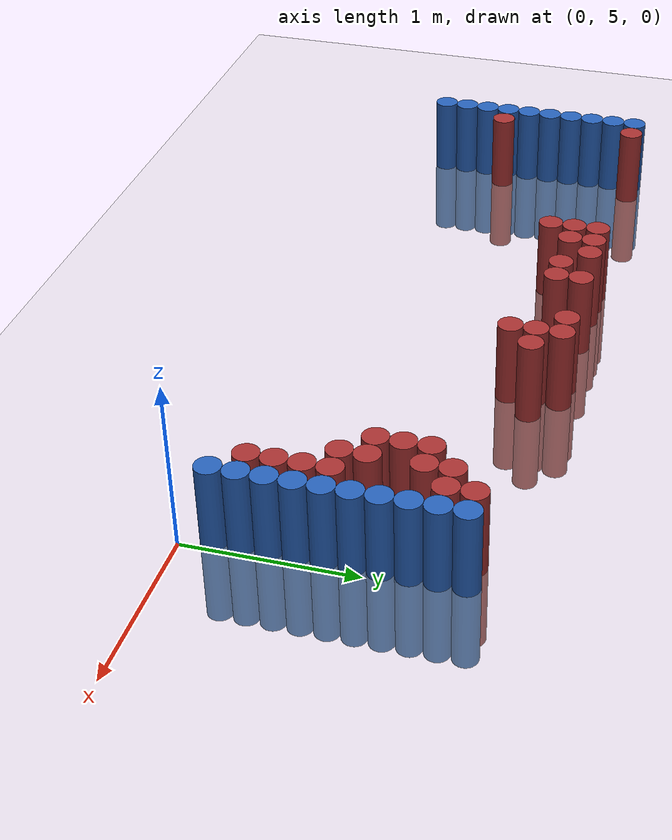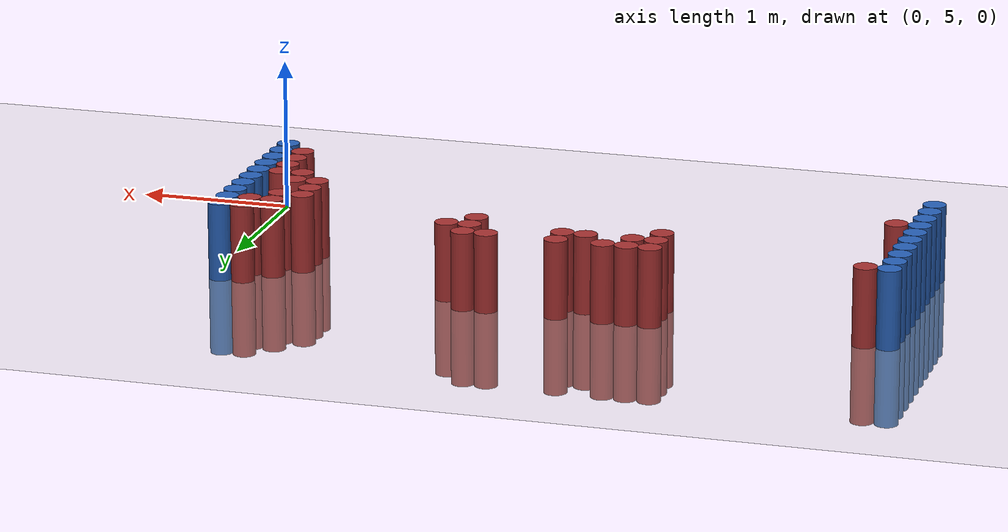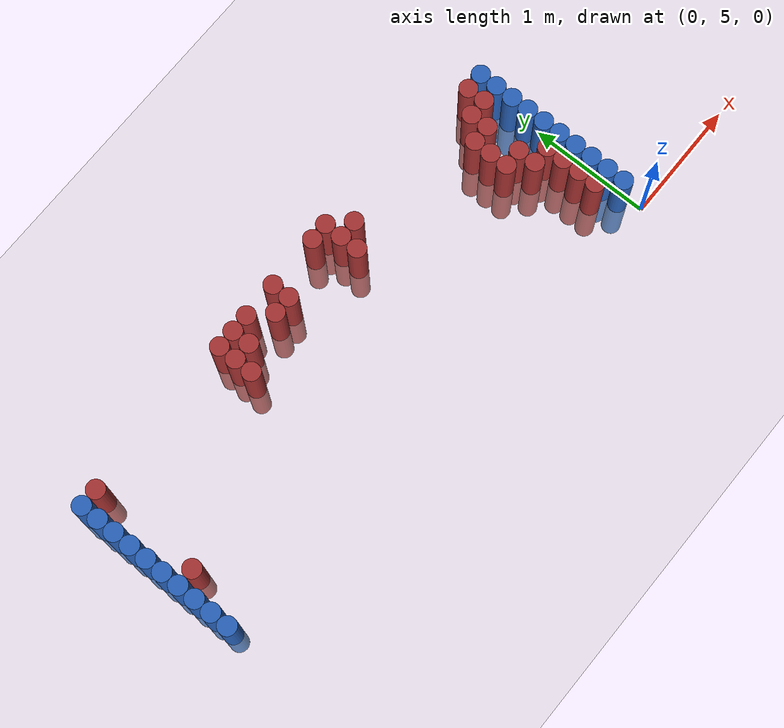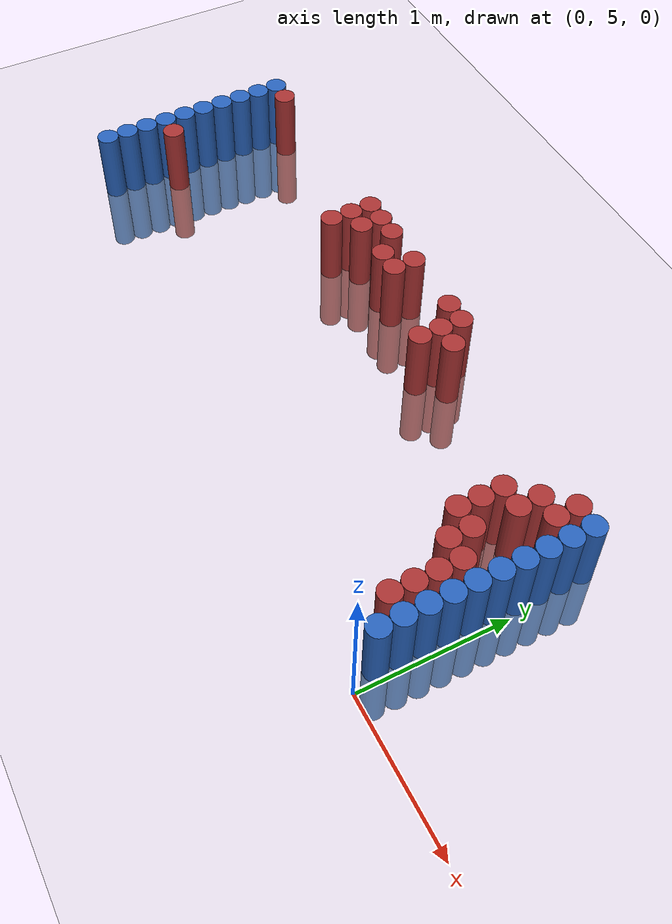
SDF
<sdf version="1.6">
 <world name="default">
  <model name="ground_plane">
   <static>1</static>
   <link name="link">
    <collision name="collision">
     <geometry><plane><normal>0 0 1</normal><size>100 100</size></plane></geometry>
     <surface><friction><ode><mu>100</mu><mu2>50</mu2></ode></friction></surface>
    </collision>
    <visual name="visual">
     <cast_shadows>0</cast_shadows>
     <geometry><plane><normal>0 0 1</normal><size>100 100</size></plane></geometry>
     <material>
      <script><uri>file://media/materials/scripts/gazebo.material</uri><name>Gazebo/Grey</name></script>
     </material>
    </visual>
   </link>
  </model>
  <model name="unit_cylinder_97">
   <static>1</static>
   <pose>-4.425000 5.325000 0.000000 0.000000 0.000000 0.000000</pose>
   <link name="link">
    <inertial>
     <mass>1</mass>
     <inertia><ixx>0.145833</ixx><ixy>0</ixy><ixz>0</ixz><iyy>0.145833</iyy><iyz>0</iyz><izz>0.125</izz></inertia>
    </inertial>
    <collision name="collision">
     <geometry><cylinder><radius>0.075000</radius><length>1</length></cylinder></geometry>
    </collision>
    <visual name="visual">
     <geometry><cylinder><radius>0.075000</radius><length>1</length></cylinder></geometry>
     <material>
      <ambient>0.152000 0.379000 0.720000 1</ambient>
      <diffuse>0.152000 0.379000 0.720000 1</diffuse>
     </material>
     <material>
      <script><name>Gazebo/Grey</name><uri>file://media/materials/scripts/gazebo.material</uri></script>
     </material>
    </visual>
   </link>
  </model>
  <model name="unit_cylinder_98">
   <static>1</static>
   <pose>-4.425000 5.475000 0.000000 0.000000 0.000000 0.000000</pose>
   <link name="link">
    <inertial>
     <mass>1</mass>
     <inertia><ixx>0.145833</ixx><ixy>0</ixy><ixz>0</ixz><iyy>0.145833</iyy><iyz>0</iyz><izz>0.125</izz></inertia>
    </inertial>
    <collision name="collision">
     <geometry><cylinder><radius>0.075000</radius><length>1</length></cylinder></geometry>
    </collision>
    <visual name="visual">
     <geometry><cylinder><radius>0.075000</radius><length>1</length></cylinder></geometry>
     <material>
      <ambient>0.152000 0.379000 0.720000 1</ambient>
      <diffuse>0.152000 0.379000 0.720000 1</diffuse>
     </material>
     <material>
      <script><name>Gazebo/Grey</name><uri>file://media/materials/scripts/gazebo.material</uri></script>
     </material>
    </visual>
   </link>
  </model>
  <model name="unit_cylinder_99">
   <static>1</static>
   <pose>-4.425000 5.625000 0.000000 0.000000 0.000000 0.000000</pose>
   <link name="link">
    <inertial>
     <mass>1</mass>
     <inertia><ixx>0.145833</ixx><ixy>0</ixy><ixz>0</ixz><iyy>0.145833</iyy><iyz>0</iyz><izz>0.125</izz></inertia>
    </inertial>
    <collision name="collision">
     <geometry><cylinder><radius>0.075000</radius><length>1</length></cylinder></geometry>
    </collision>
    <visual name="visual">
     <geometry><cylinder><radius>0.075000</radius><length>1</length></cylinder></geometry>
     <material>
      <ambient>0.152000 0.379000 0.720000 1</ambient>
      <diffuse>0.152000 0.379000 0.720000 1</diffuse>
     </material>
     <material>
      <script><name>Gazebo/Grey</name><uri>file://media/materials/scripts/gazebo.material</uri></script>
     </material>
    </visual>
   </link>
  </model>
  <model name="unit_cylinder_100">
   <static>1</static>
   <pose>-4.425000 5.775000 0.000000 0.000000 0.000000 0.000000</pose>
   <link name="link">
    <inertial>
     <mass>1</mass>
     <inertia><ixx>0.145833</ixx><ixy>0</ixy><ixz>0</ixz><iyy>0.145833</iyy><iyz>0</iyz><izz>0.125</izz></inertia>
    </inertial>
    <collision name="collision">
     <geometry><cylinder><radius>0.075000</radius><length>1</length></cylinder></geometry>
    </collision>
    <visual name="visual">
     <geometry><cylinder><radius>0.075000</radius><length>1</length></cylinder></geometry>
     <material>
      <ambient>0.152000 0.379000 0.720000 1</ambient>
      <diffuse>0.152000 0.379000 0.720000 1</diffuse>
     </material>
     <material>
      <script><name>Gazebo/Grey</name><uri>file://media/materials/scripts/gazebo.material</uri></script>
     </material>
    </visual>
   </link>
  </model>
  <model name="unit_cylinder_101">
   <static>1</static>
   <pose>-4.425000 5.925000 0.000000 0.000000 0.000000 0.000000</pose>
   <link name="link">
    <inertial>
     <mass>1</mass>
     <inertia><ixx>0.145833</ixx><ixy>0</ixy><ixz>0</ixz><iyy>0.145833</iyy><iyz>0</iyz><izz>0.125</izz></inertia>
    </inertial>
    <collision name="collision">
     <geometry><cylinder><radius>0.075000</radius><length>1</length></cylinder></geometry>
    </collision>
    <visual name="visual">
     <geometry><cylinder><radius>0.075000</radius><length>1</length></cylinder></geometry>
     <material>
      <ambient>0.152000 0.379000 0.720000 1</ambient>
      <diffuse>0.152000 0.379000 0.720000 1</diffuse>
     </material>
     <material>
      <script><name>Gazebo/Grey</name><uri>file://media/materials/scripts/gazebo.material</uri></script>
     </material>
    </visual>
   </link>
  </model>
  <model name="unit_cylinder_102">
   <static>1</static>
   <pose>-4.425000 6.075000 0.000000 0.000000 0.000000 0.000000</pose>
   <link name="link">
    <inertial>
     <mass>1</mass>
     <inertia><ixx>0.145833</ixx><ixy>0</ixy><ixz>0</ixz><iyy>0.145833</iyy><iyz>0</iyz><izz>0.125</izz></inertia>
    </inertial>
    <collision name="collision">
     <geometry><cylinder><radius>0.075000</radius><length>1</length></cylinder></geometry>
    </collision>
    <visual name="visual">
     <geometry><cylinder><radius>0.075000</radius><length>1</length></cylinder></geometry>
     <material>
      <ambient>0.152000 0.379000 0.720000 1</ambient>
      <diffuse>0.152000 0.379000 0.720000 1</diffuse>
     </material>
     <material>
      <script><name>Gazebo/Grey</name><uri>file://media/materials/scripts/gazebo.material</uri></script>
     </material>
    </visual>
   </link>
  </model>
  <model name="unit_cylinder_103">
   <static>1</static>
   <pose>-4.425000 6.225000 0.000000 0.000000 0.000000 0.000000</pose>
   <link name="link">
    <inertial>
     <mass>1</mass>
     <inertia><ixx>0.145833</ixx><ixy>0</ixy><ixz>0</ixz><iyy>0.145833</iyy><iyz>0</iyz><izz>0.125</izz></inertia>
    </inertial>
    <collision name="collision">
     <geometry><cylinder><radius>0.075000</radius><length>1</length></cylinder></geometry>
    </collision>
    <visual name="visual">
     <geometry><cylinder><radius>0.075000</radius><length>1</length></cylinder></geometry>
     <material>
      <ambient>0.152000 0.379000 0.720000 1</ambient>
      <diffuse>0.152000 0.379000 0.720000 1</diffuse>
     </material>
     <material>
      <script><name>Gazebo/Grey</name><uri>file://media/materials/scripts/gazebo.material</uri></script>
     </material>
    </visual>
   </link>
  </model>
  <model name="unit_cylinder_104">
   <static>1</static>
   <pose>-4.425000 6.375000 0.000000 0.000000 0.000000 0.000000</pose>
   <link name="link">
    <inertial>
     <mass>1</mass>
     <inertia><ixx>0.145833</ixx><ixy>0</ixy><ixz>0</ixz><iyy>0.145833</iyy><iyz>0</iyz><izz>0.125</izz></inertia>
    </inertial>
    <collision name="collision">
     <geometry><cylinder><radius>0.075000</radius><length>1</length></cylinder></geometry>
    </collision>
    <visual name="visual">
     <geometry><cylinder><radius>0.075000</radius><length>1</length></cylinder></geometry>
     <material>
      <ambient>0.152000 0.379000 0.720000 1</ambient>
      <diffuse>0.152000 0.379000 0.720000 1</diffuse>
     </material>
     <material>
      <script><name>Gazebo/Grey</name><uri>file://media/materials/scripts/gazebo.material</uri></script>
     </material>
    </visual>
   </link>
  </model>
  <model name="unit_cylinder_105">
   <static>1</static>
   <pose>-4.425000 6.525000 0.000000 0.000000 0.000000 0.000000</pose>
   <link name="link">
    <inertial>
     <mass>1</mass>
     <inertia><ixx>0.145833</ixx><ixy>0</ixy><ixz>0</ixz><iyy>0.145833</iyy><iyz>0</iyz><izz>0.125</izz></inertia>
    </inertial>
    <collision name="collision">
     <geometry><cylinder><radius>0.075000</radius><length>1</length></cylinder></geometry>
    </collision>
    <visual name="visual">
     <geometry><cylinder><radius>0.075000</radius><length>1</length></cylinder></geometry>
     <material>
      <ambient>0.152000 0.379000 0.720000 1</ambient>
      <diffuse>0.152000 0.379000 0.720000 1</diffuse>
     </material>
     <material>
      <script><name>Gazebo/Grey</name><uri>file://media/materials/scripts/gazebo.material</uri></script>
     </material>
    </visual>
   </link>
  </model>
  <model name="unit_cylinder_106">
   <static>1</static>
   <pose>-4.425000 6.675000 0.000000 0.000000 0.000000 0.000000</pose>
   <link name="link">
    <inertial>
     <mass>1</mass>
     <inertia><ixx>0.145833</ixx><ixy>0</ixy><ixz>0</ixz><iyy>0.145833</iyy><iyz>0</iyz><izz>0.125</izz></inertia>
    </inertial>
    <collision name="collision">
     <geometry><cylinder><radius>0.075000</radius><length>1</length></cylinder></geometry>
    </collision>
    <visual name="visual">
     <geometry><cylinder><radius>0.075000</radius><length>1</length></cylinder></geometry>
     <material>
      <ambient>0.152000 0.379000 0.720000 1</ambient>
      <diffuse>0.152000 0.379000 0.720000 1</diffuse>
     </material>
     <material>
      <script><name>Gazebo/Grey</name><uri>file://media/materials/scripts/gazebo.material</uri></script>
     </material>
    </visual>
   </link>
  </model>
  <model name="unit_cylinder_127">
   <static>1</static>
   <pose>-4.275000 5.775000 0.000000 0.000000 0.000000 0.000000</pose>
   <link name="link">
    <inertial>
     <mass>1</mass>
     <inertia><ixx>0.145833</ixx><ixy>0</ixy><ixz>0</ixz><iyy>0.145833</iyy><iyz>0</iyz><izz>0.125</izz></inertia>
    </inertial>
    <collision name="collision">
     <geometry><cylinder><radius>0.075000</radius><length>1</length></cylinder></geometry>
    </collision>
    <visual name="visual">
     <geometry><cylinder><radius>0.075000</radius><length>1</length></cylinder></geometry>
     <material>
      <ambient>0.648000 0.192000 0.192000 1</ambient>
      <diffuse>0.648000 0.192000 0.192000 1</diffuse>
     </material>
     <material>
      <script><name>Gazebo/Grey</name><uri>file://media/materials/scripts/gazebo.material</uri></script>
     </material>
    </visual>
   </link>
  </model>
  <model name="unit_cylinder_128">
   <static>1</static>
   <pose>-4.275000 6.675000 0.000000 0.000000 0.000000 0.000000</pose>
   <link name="link">
    <inertial>
     <mass>1</mass>
     <inertia><ixx>0.145833</ixx><ixy>0</ixy><ixz>0</ixz><iyy>0.145833</iyy><iyz>0</iyz><izz>0.125</izz></inertia>
    </inertial>
    <collision name="collision">
     <geometry><cylinder><radius>0.075000</radius><length>1</length></cylinder></geometry>
    </collision>
    <visual name="visual">
     <geometry><cylinder><radius>0.075000</radius><length>1</length></cylinder></geometry>
     <material>
      <ambient>0.648000 0.192000 0.192000 1</ambient>
      <diffuse>0.648000 0.192000 0.192000 1</diffuse>
     </material>
     <material>
      <script><name>Gazebo/Grey</name><uri>file://media/materials/scripts/gazebo.material</uri></script>
     </material>
    </visual>
   </link>
  </model>
  <model name="unit_cylinder_159">
   <static>1</static>
   <pose>-2.925000 6.375000 0.000000 0.000000 0.000000 0.000000</pose>
   <link name="link">
    <inertial>
     <mass>1</mass>
     <inertia><ixx>0.145833</ixx><ixy>0</ixy><ixz>0</ixz><iyy>0.145833</iyy><iyz>0</iyz><izz>0.125</izz></inertia>
    </inertial>
    <collision name="collision">
     <geometry><cylinder><radius>0.075000</radius><length>1</length></cylinder></geometry>
    </collision>
    <visual name="visual">
     <geometry><cylinder><radius>0.075000</radius><length>1</length></cylinder></geometry>
     <material>
      <ambient>0.648000 0.192000 0.192000 1</ambient>
      <diffuse>0.648000 0.192000 0.192000 1</diffuse>
     </material>
     <material>
      <script><name>Gazebo/Grey</name><uri>file://media/materials/scripts/gazebo.material</uri></script>
     </material>
    </visual>
   </link>
  </model>
  <model name="unit_cylinder_160">
   <static>1</static>
   <pose>-2.925000 6.525000 0.000000 0.000000 0.000000 0.000000</pose>
   <link name="link">
    <inertial>
     <mass>1</mass>
     <inertia><ixx>0.145833</ixx><ixy>0</ixy><ixz>0</ixz><iyy>0.145833</iyy><iyz>0</iyz><izz>0.125</izz></inertia>
    </inertial>
    <collision name="collision">
     <geometry><cylinder><radius>0.075000</radius><length>1</length></cylinder></geometry>
    </collision>
    <visual name="visual">
     <geometry><cylinder><radius>0.075000</radius><length>1</length></cylinder></geometry>
     <material>
      <ambient>0.648000 0.192000 0.192000 1</ambient>
      <diffuse>0.648000 0.192000 0.192000 1</diffuse>
     </material>
     <material>
      <script><name>Gazebo/Grey</name><uri>file://media/materials/scripts/gazebo.material</uri></script>
     </material>
    </visual>
   </link>
  </model>
  <model name="unit_cylinder_161">
   <static>1</static>
   <pose>-2.925000 6.675000 0.000000 0.000000 0.000000 0.000000</pose>
   <link name="link">
    <inertial>
     <mass>1</mass>
     <inertia><ixx>0.145833</ixx><ixy>0</ixy><ixz>0</ixz><iyy>0.145833</iyy><iyz>0</iyz><izz>0.125</izz></inertia>
    </inertial>
    <collision name="collision">
     <geometry><cylinder><radius>0.075000</radius><length>1</length></cylinder></geometry>
    </collision>
    <visual name="visual">
     <geometry><cylinder><radius>0.075000</radius><length>1</length></cylinder></geometry>
     <material>
      <ambient>0.648000 0.192000 0.192000 1</ambient>
      <diffuse>0.648000 0.192000 0.192000 1</diffuse>
     </material>
     <material>
      <script><name>Gazebo/Grey</name><uri>file://media/materials/scripts/gazebo.material</uri></script>
     </material>
    </visual>
   </link>
  </model>
  <model name="unit_cylinder_162">
   <static>1</static>
   <pose>-2.775000 6.525000 0.000000 0.000000 0.000000 0.000000</pose>
   <link name="link">
    <inertial>
     <mass>1</mass>
     <inertia><ixx>0.145833</ixx><ixy>0</ixy><ixz>0</ixz><iyy>0.145833</iyy><iyz>0</iyz><izz>0.125</izz></inertia>
    </inertial>
    <collision name="collision">
     <geometry><cylinder><radius>0.075000</radius><length>1</length></cylinder></geometry>
    </collision>
    <visual name="visual">
     <geometry><cylinder><radius>0.075000</radius><length>1</length></cylinder></geometry>
     <material>
      <ambient>0.648000 0.192000 0.192000 1</ambient>
      <diffuse>0.648000 0.192000 0.192000 1</diffuse>
     </material>
     <material>
      <script><name>Gazebo/Grey</name><uri>file://media/materials/scripts/gazebo.material</uri></script>
     </material>
    </visual>
   </link>
  </model>
  <model name="unit_cylinder_163">
   <static>1</static>
   <pose>-2.775000 6.675000 0.000000 0.000000 0.000000 0.000000</pose>
   <link name="link">
    <inertial>
     <mass>1</mass>
     <inertia><ixx>0.145833</ixx><ixy>0</ixy><ixz>0</ixz><iyy>0.145833</iyy><iyz>0</iyz><izz>0.125</izz></inertia>
    </inertial>
    <collision name="collision">
     <geometry><cylinder><radius>0.075000</radius><length>1</length></cylinder></geometry>
    </collision>
    <visual name="visual">
     <geometry><cylinder><radius>0.075000</radius><length>1</length></cylinder></geometry>
     <material>
      <ambient>0.648000 0.192000 0.192000 1</ambient>
      <diffuse>0.648000 0.192000 0.192000 1</diffuse>
     </material>
     <material>
      <script><name>Gazebo/Grey</name><uri>file://media/materials/scripts/gazebo.material</uri></script>
     </material>
    </visual>
   </link>
  </model>
  <model name="unit_cylinder_165">
   <static>1</static>
   <pose>-2.625000 6.675000 0.000000 0.000000 0.000000 0.000000</pose>
   <link name="link">
    <inertial>
     <mass>1</mass>
     <inertia><ixx>0.145833</ixx><ixy>0</ixy><ixz>0</ixz><iyy>0.145833</iyy><iyz>0</iyz><izz>0.125</izz></inertia>
    </inertial>
    <collision name="collision">
     <geometry><cylinder><radius>0.075000</radius><length>1</length></cylinder></geometry>
    </collision>
    <visual name="visual">
     <geometry><cylinder><radius>0.075000</radius><length>1</length></cylinder></geometry>
     <material>
      <ambient>0.648000 0.192000 0.192000 1</ambient>
      <diffuse>0.648000 0.192000 0.192000 1</diffuse>
     </material>
     <material>
      <script><name>Gazebo/Grey</name><uri>file://media/materials/scripts/gazebo.material</uri></script>
     </material>
    </visual>
   </link>
  </model>
  <model name="unit_cylinder_166">
   <static>1</static>
   <pose>-2.475000 6.525000 0.000000 0.000000 0.000000 0.000000</pose>
   <link name="link">
    <inertial>
     <mass>1</mass>
     <inertia><ixx>0.145833</ixx><ixy>0</ixy><ixz>0</ixz><iyy>0.145833</iyy><iyz>0</iyz><izz>0.125</izz></inertia>
    </inertial>
    <collision name="collision">
     <geometry><cylinder><radius>0.075000</radius><length>1</length></cylinder></geometry>
    </collision>
    <visual name="visual">
     <geometry><cylinder><radius>0.075000</radius><length>1</length></cylinder></geometry>
     <material>
      <ambient>0.648000 0.192000 0.192000 1</ambient>
      <diffuse>0.648000 0.192000 0.192000 1</diffuse>
     </material>
     <material>
      <script><name>Gazebo/Grey</name><uri>file://media/materials/scripts/gazebo.material</uri></script>
     </material>
    </visual>
   </link>
  </model>
  <model name="unit_cylinder_167">
   <static>1</static>
   <pose>-2.325000 6.525000 0.000000 0.000000 0.000000 0.000000</pose>
   <link name="link">
    <inertial>
     <mass>1</mass>
     <inertia><ixx>0.145833</ixx><ixy>0</ixy><ixz>0</ixz><iyy>0.145833</iyy><iyz>0</iyz><izz>0.125</izz></inertia>
    </inertial>
    <collision name="collision">
     <geometry><cylinder><radius>0.075000</radius><length>1</length></cylinder></geometry>
    </collision>
    <visual name="visual">
     <geometry><cylinder><radius>0.075000</radius><length>1</length></cylinder></geometry>
     <material>
      <ambient>0.648000 0.192000 0.192000 1</ambient>
      <diffuse>0.648000 0.192000 0.192000 1</diffuse>
     </material>
     <material>
      <script><name>Gazebo/Grey</name><uri>file://media/materials/scripts/gazebo.material</uri></script>
     </material>
    </visual>
   </link>
  </model>
  <model name="unit_cylinder_168">
   <static>1</static>
   <pose>-2.325000 6.675000 0.000000 0.000000 0.000000 0.000000</pose>
   <link name="link">
    <inertial>
     <mass>1</mass>
     <inertia><ixx>0.145833</ixx><ixy>0</ixy><ixz>0</ixz><iyy>0.145833</iyy><iyz>0</iyz><izz>0.125</izz></inertia>
    </inertial>
    <collision name="collision">
     <geometry><cylinder><radius>0.075000</radius><length>1</length></cylinder></geometry>
    </collision>
    <visual name="visual">
     <geometry><cylinder><radius>0.075000</radius><length>1</length></cylinder></geometry>
     <material>
      <ambient>0.648000 0.192000 0.192000 1</ambient>
      <diffuse>0.648000 0.192000 0.192000 1</diffuse>
     </material>
     <material>
      <script><name>Gazebo/Grey</name><uri>file://media/materials/scripts/gazebo.material</uri></script>
     </material>
    </visual>
   </link>
  </model>
  <model name="unit_cylinder_181">
   <static>1</static>
   <pose>-1.875000 6.675000 0.000000 0.000000 0.000000 0.000000</pose>
   <link name="link">
    <inertial>
     <mass>1</mass>
     <inertia><ixx>0.145833</ixx><ixy>0</ixy><ixz>0</ixz><iyy>0.145833</iyy><iyz>0</iyz><izz>0.125</izz></inertia>
    </inertial>
    <collision name="collision">
     <geometry><cylinder><radius>0.075000</radius><length>1</length></cylinder></geometry>
    </collision>
    <visual name="visual">
     <geometry><cylinder><radius>0.075000</radius><length>1</length></cylinder></geometry>
     <material>
      <ambient>0.648000 0.192000 0.192000 1</ambient>
      <diffuse>0.648000 0.192000 0.192000 1</diffuse>
     </material>
     <material>
      <script><name>Gazebo/Grey</name><uri>file://media/materials/scripts/gazebo.material</uri></script>
     </material>
    </visual>
   </link>
  </model>
  <model name="unit_cylinder_187">
   <static>1</static>
   <pose>-1.725000 6.375000 0.000000 0.000000 0.000000 0.000000</pose>
   <link name="link">
    <inertial>
     <mass>1</mass>
     <inertia><ixx>0.145833</ixx><ixy>0</ixy><ixz>0</ixz><iyy>0.145833</iyy><iyz>0</iyz><izz>0.125</izz></inertia>
    </inertial>
    <collision name="collision">
     <geometry><cylinder><radius>0.075000</radius><length>1</length></cylinder></geometry>
    </collision>
    <visual name="visual">
     <geometry><cylinder><radius>0.075000</radius><length>1</length></cylinder></geometry>
     <material>
      <ambient>0.648000 0.192000 0.192000 1</ambient>
      <diffuse>0.648000 0.192000 0.192000 1</diffuse>
     </material>
     <material>
      <script><name>Gazebo/Grey</name><uri>file://media/materials/scripts/gazebo.material</uri></script>
     </material>
    </visual>
   </link>
  </model>
  <model name="unit_cylinder_188">
   <static>1</static>
   <pose>-1.725000 6.525000 0.000000 0.000000 0.000000 0.000000</pose>
   <link name="link">
    <inertial>
     <mass>1</mass>
     <inertia><ixx>0.145833</ixx><ixy>0</ixy><ixz>0</ixz><iyy>0.145833</iyy><iyz>0</iyz><izz>0.125</izz></inertia>
    </inertial>
    <collision name="collision">
     <geometry><cylinder><radius>0.075000</radius><length>1</length></cylinder></geometry>
    </collision>
    <visual name="visual">
     <geometry><cylinder><radius>0.075000</radius><length>1</length></cylinder></geometry>
     <material>
      <ambient>0.648000 0.192000 0.192000 1</ambient>
      <diffuse>0.648000 0.192000 0.192000 1</diffuse>
     </material>
     <material>
      <script><name>Gazebo/Grey</name><uri>file://media/materials/scripts/gazebo.material</uri></script>
     </material>
    </visual>
   </link>
  </model>
  <model name="unit_cylinder_189">
   <static>1</static>
   <pose>-1.725000 6.675000 0.000000 0.000000 0.000000 0.000000</pose>
   <link name="link">
    <inertial>
     <mass>1</mass>
     <inertia><ixx>0.145833</ixx><ixy>0</ixy><ixz>0</ixz><iyy>0.145833</iyy><iyz>0</iyz><izz>0.125</izz></inertia>
    </inertial>
    <collision name="collision">
     <geometry><cylinder><radius>0.075000</radius><length>1</length></cylinder></geometry>
    </collision>
    <visual name="visual">
     <geometry><cylinder><radius>0.075000</radius><length>1</length></cylinder></geometry>
     <material>
      <ambient>0.648000 0.192000 0.192000 1</ambient>
      <diffuse>0.648000 0.192000 0.192000 1</diffuse>
     </material>
     <material>
      <script><name>Gazebo/Grey</name><uri>file://media/materials/scripts/gazebo.material</uri></script>
     </material>
    </visual>
   </link>
  </model>
  <model name="unit_cylinder_198">
   <static>1</static>
   <pose>-1.575000 6.525000 0.000000 0.000000 0.000000 0.000000</pose>
   <link name="link">
    <inertial>
     <mass>1</mass>
     <inertia><ixx>0.145833</ixx><ixy>0</ixy><ixz>0</ixz><iyy>0.145833</iyy><iyz>0</iyz><izz>0.125</izz></inertia>
    </inertial>
    <collision name="collision">
     <geometry><cylinder><radius>0.075000</radius><length>1</length></cylinder></geometry>
    </collision>
    <visual name="visual">
     <geometry><cylinder><radius>0.075000</radius><length>1</length></cylinder></geometry>
     <material>
      <ambient>0.648000 0.192000 0.192000 1</ambient>
      <diffuse>0.648000 0.192000 0.192000 1</diffuse>
     </material>
     <material>
      <script><name>Gazebo/Grey</name><uri>file://media/materials/scripts/gazebo.material</uri></script>
     </material>
    </visual>
   </link>
  </model>
  <model name="unit_cylinder_223">
   <static>1</static>
   <pose>-0.525000 5.925000 0.000000 0.000000 0.000000 0.000000</pose>
   <link name="link">
    <inertial>
     <mass>1</mass>
     <inertia><ixx>0.145833</ixx><ixy>0</ixy><ixz>0</ixz><iyy>0.145833</iyy><iyz>0</iyz><izz>0.125</izz></inertia>
    </inertial>
    <collision name="collision">
     <geometry><cylinder><radius>0.075000</radius><length>1</length></cylinder></geometry>
    </collision>
    <visual name="visual">
     <geometry><cylinder><radius>0.075000</radius><length>1</length></cylinder></geometry>
     <material>
      <ambient>0.648000 0.192000 0.192000 1</ambient>
      <diffuse>0.648000 0.192000 0.192000 1</diffuse>
     </material>
     <material>
      <script><name>Gazebo/Grey</name><uri>file://media/materials/scripts/gazebo.material</uri></script>
     </material>
    </visual>
   </link>
  </model>
  <model name="unit_cylinder_224">
   <static>1</static>
   <pose>-0.525000 6.075000 0.000000 0.000000 0.000000 0.000000</pose>
   <link name="link">
    <inertial>
     <mass>1</mass>
     <inertia><ixx>0.145833</ixx><ixy>0</ixy><ixz>0</ixz><iyy>0.145833</iyy><iyz>0</iyz><izz>0.125</izz></inertia>
    </inertial>
    <collision name="collision">
     <geometry><cylinder><radius>0.075000</radius><length>1</length></cylinder></geometry>
    </collision>
    <visual name="visual">
     <geometry><cylinder><radius>0.075000</radius><length>1</length></cylinder></geometry>
     <material>
      <ambient>0.648000 0.192000 0.192000 1</ambient>
      <diffuse>0.648000 0.192000 0.192000 1</diffuse>
     </material>
     <material>
      <script><name>Gazebo/Grey</name><uri>file://media/materials/scripts/gazebo.material</uri></script>
     </material>
    </visual>
   </link>
  </model>
  <model name="unit_cylinder_225">
   <static>1</static>
   <pose>-0.525000 6.225000 0.000000 0.000000 0.000000 0.000000</pose>
   <link name="link">
    <inertial>
     <mass>1</mass>
     <inertia><ixx>0.145833</ixx><ixy>0</ixy><ixz>0</ixz><iyy>0.145833</iyy><iyz>0</iyz><izz>0.125</izz></inertia>
    </inertial>
    <collision name="collision">
     <geometry><cylinder><radius>0.075000</radius><length>1</length></cylinder></geometry>
    </collision>
    <visual name="visual">
     <geometry><cylinder><radius>0.075000</radius><length>1</length></cylinder></geometry>
     <material>
      <ambient>0.648000 0.192000 0.192000 1</ambient>
      <diffuse>0.648000 0.192000 0.192000 1</diffuse>
     </material>
     <material>
      <script><name>Gazebo/Grey</name><uri>file://media/materials/scripts/gazebo.material</uri></script>
     </material>
    </visual>
   </link>
  </model>
  <model name="unit_cylinder_232">
   <static>1</static>
   <pose>-0.375000 5.775000 0.000000 0.000000 0.000000 0.000000</pose>
   <link name="link">
    <inertial>
     <mass>1</mass>
     <inertia><ixx>0.145833</ixx><ixy>0</ixy><ixz>0</ixz><iyy>0.145833</iyy><iyz>0</iyz><izz>0.125</izz></inertia>
    </inertial>
    <collision name="collision">
     <geometry><cylinder><radius>0.075000</radius><length>1</length></cylinder></geometry>
    </collision>
    <visual name="visual">
     <geometry><cylinder><radius>0.075000</radius><length>1</length></cylinder></geometry>
     <material>
      <ambient>0.648000 0.192000 0.192000 1</ambient>
      <diffuse>0.648000 0.192000 0.192000 1</diffuse>
     </material>
     <material>
      <script><name>Gazebo/Grey</name><uri>file://media/materials/scripts/gazebo.material</uri></script>
     </material>
    </visual>
   </link>
  </model>
  <model name="unit_cylinder_233">
   <static>1</static>
   <pose>-0.375000 5.925000 0.000000 0.000000 0.000000 0.000000</pose>
   <link name="link">
    <inertial>
     <mass>1</mass>
     <inertia><ixx>0.145833</ixx><ixy>0</ixy><ixz>0</ixz><iyy>0.145833</iyy><iyz>0</iyz><izz>0.125</izz></inertia>
    </inertial>
    <collision name="collision">
     <geometry><cylinder><radius>0.075000</radius><length>1</length></cylinder></geometry>
    </collision>
    <visual name="visual">
     <geometry><cylinder><radius>0.075000</radius><length>1</length></cylinder></geometry>
     <material>
      <ambient>0.648000 0.192000 0.192000 1</ambient>
      <diffuse>0.648000 0.192000 0.192000 1</diffuse>
     </material>
     <material>
      <script><name>Gazebo/Grey</name><uri>file://media/materials/scripts/gazebo.material</uri></script>
     </material>
    </visual>
   </link>
  </model>
  <model name="unit_cylinder_234">
   <static>1</static>
   <pose>-0.375000 6.225000 0.000000 0.000000 0.000000 0.000000</pose>
   <link name="link">
    <inertial>
     <mass>1</mass>
     <inertia><ixx>0.145833</ixx><ixy>0</ixy><ixz>0</ixz><iyy>0.145833</iyy><iyz>0</iyz><izz>0.125</izz></inertia>
    </inertial>
    <collision name="collision">
     <geometry><cylinder><radius>0.075000</radius><length>1</length></cylinder></geometry>
    </collision>
    <visual name="visual">
     <geometry><cylinder><radius>0.075000</radius><length>1</length></cylinder></geometry>
     <material>
      <ambient>0.648000 0.192000 0.192000 1</ambient>
      <diffuse>0.648000 0.192000 0.192000 1</diffuse>
     </material>
     <material>
      <script><name>Gazebo/Grey</name><uri>file://media/materials/scripts/gazebo.material</uri></script>
     </material>
    </visual>
   </link>
  </model>
  <model name="unit_cylinder_235">
   <static>1</static>
   <pose>-0.375000 6.375000 0.000000 0.000000 0.000000 0.000000</pose>
   <link name="link">
    <inertial>
     <mass>1</mass>
     <inertia><ixx>0.145833</ixx><ixy>0</ixy><ixz>0</ixz><iyy>0.145833</iyy><iyz>0</iyz><izz>0.125</izz></inertia>
    </inertial>
    <collision name="collision">
     <geometry><cylinder><radius>0.075000</radius><length>1</length></cylinder></geometry>
    </collision>
    <visual name="visual">
     <geometry><cylinder><radius>0.075000</radius><length>1</length></cylinder></geometry>
     <material>
      <ambient>0.648000 0.192000 0.192000 1</ambient>
      <diffuse>0.648000 0.192000 0.192000 1</diffuse>
     </material>
     <material>
      <script><name>Gazebo/Grey</name><uri>file://media/materials/scripts/gazebo.material</uri></script>
     </material>
    </visual>
   </link>
  </model>
  <model name="unit_cylinder_248">
   <static>1</static>
   <pose>-0.225000 5.325000 0.000000 0.000000 0.000000 0.000000</pose>
   <link name="link">
    <inertial>
     <mass>1</mass>
     <inertia><ixx>0.145833</ixx><ixy>0</ixy><ixz>0</ixz><iyy>0.145833</iyy><iyz>0</iyz><izz>0.125</izz></inertia>
    </inertial>
    <collision name="collision">
     <geometry><cylinder><radius>0.075000</radius><length>1</length></cylinder></geometry>
    </collision>
    <visual name="visual">
     <geometry><cylinder><radius>0.075000</radius><length>1</length></cylinder></geometry>
     <material>
      <ambient>0.648000 0.192000 0.192000 1</ambient>
      <diffuse>0.648000 0.192000 0.192000 1</diffuse>
     </material>
     <material>
      <script><name>Gazebo/Grey</name><uri>file://media/materials/scripts/gazebo.material</uri></script>
     </material>
    </visual>
   </link>
  </model>
  <model name="unit_cylinder_249">
   <static>1</static>
   <pose>-0.225000 5.475000 0.000000 0.000000 0.000000 0.000000</pose>
   <link name="link">
    <inertial>
     <mass>1</mass>
     <inertia><ixx>0.145833</ixx><ixy>0</ixy><ixz>0</ixz><iyy>0.145833</iyy><iyz>0</iyz><izz>0.125</izz></inertia>
    </inertial>
    <collision name="collision">
     <geometry><cylinder><radius>0.075000</radius><length>1</length></cylinder></geometry>
    </collision>
    <visual name="visual">
     <geometry><cylinder><radius>0.075000</radius><length>1</length></cylinder></geometry>
     <material>
      <ambient>0.648000 0.192000 0.192000 1</ambient>
      <diffuse>0.648000 0.192000 0.192000 1</diffuse>
     </material>
     <material>
      <script><name>Gazebo/Grey</name><uri>file://media/materials/scripts/gazebo.material</uri></script>
     </material>
    </visual>
   </link>
  </model>
  <model name="unit_cylinder_250">
   <static>1</static>
   <pose>-0.225000 5.625000 0.000000 0.000000 0.000000 0.000000</pose>
   <link name="link">
    <inertial>
     <mass>1</mass>
     <inertia><ixx>0.145833</ixx><ixy>0</ixy><ixz>0</ixz><iyy>0.145833</iyy><iyz>0</iyz><izz>0.125</izz></inertia>
    </inertial>
    <collision name="collision">
     <geometry><cylinder><radius>0.075000</radius><length>1</length></cylinder></geometry>
    </collision>
    <visual name="visual">
     <geometry><cylinder><radius>0.075000</radius><length>1</length></cylinder></geometry>
     <material>
      <ambient>0.648000 0.192000 0.192000 1</ambient>
      <diffuse>0.648000 0.192000 0.192000 1</diffuse>
     </material>
     <material>
      <script><name>Gazebo/Grey</name><uri>file://media/materials/scripts/gazebo.material</uri></script>
     </material>
    </visual>
   </link>
  </model>
  <model name="unit_cylinder_251">
   <static>1</static>
   <pose>-0.225000 5.775000 0.000000 0.000000 0.000000 0.000000</pose>
   <link name="link">
    <inertial>
     <mass>1</mass>
     <inertia><ixx>0.145833</ixx><ixy>0</ixy><ixz>0</ixz><iyy>0.145833</iyy><iyz>0</iyz><izz>0.125</izz></inertia>
    </inertial>
    <collision name="collision">
     <geometry><cylinder><radius>0.075000</radius><length>1</length></cylinder></geometry>
    </collision>
    <visual name="visual">
     <geometry><cylinder><radius>0.075000</radius><length>1</length></cylinder></geometry>
     <material>
      <ambient>0.648000 0.192000 0.192000 1</ambient>
      <diffuse>0.648000 0.192000 0.192000 1</diffuse>
     </material>
     <material>
      <script><name>Gazebo/Grey</name><uri>file://media/materials/scripts/gazebo.material</uri></script>
     </material>
    </visual>
   </link>
  </model>
  <model name="unit_cylinder_252">
   <static>1</static>
   <pose>-0.225000 6.375000 0.000000 0.000000 0.000000 0.000000</pose>
   <link name="link">
    <inertial>
     <mass>1</mass>
     <inertia><ixx>0.145833</ixx><ixy>0</ixy><ixz>0</ixz><iyy>0.145833</iyy><iyz>0</iyz><izz>0.125</izz></inertia>
    </inertial>
    <collision name="collision">
     <geometry><cylinder><radius>0.075000</radius><length>1</length></cylinder></geometry>
    </collision>
    <visual name="visual">
     <geometry><cylinder><radius>0.075000</radius><length>1</length></cylinder></geometry>
     <material>
      <ambient>0.648000 0.192000 0.192000 1</ambient>
      <diffuse>0.648000 0.192000 0.192000 1</diffuse>
     </material>
     <material>
      <script><name>Gazebo/Grey</name><uri>file://media/materials/scripts/gazebo.material</uri></script>
     </material>
    </visual>
   </link>
  </model>
  <model name="unit_cylinder_253">
   <static>1</static>
   <pose>-0.225000 6.525000 0.000000 0.000000 0.000000 0.000000</pose>
   <link name="link">
    <inertial>
     <mass>1</mass>
     <inertia><ixx>0.145833</ixx><ixy>0</ixy><ixz>0</ixz><iyy>0.145833</iyy><iyz>0</iyz><izz>0.125</izz></inertia>
    </inertial>
    <collision name="collision">
     <geometry><cylinder><radius>0.075000</radius><length>1</length></cylinder></geometry>
    </collision>
    <visual name="visual">
     <geometry><cylinder><radius>0.075000</radius><length>1</length></cylinder></geometry>
     <material>
      <ambient>0.648000 0.192000 0.192000 1</ambient>
      <diffuse>0.648000 0.192000 0.192000 1</diffuse>
     </material>
     <material>
      <script><name>Gazebo/Grey</name><uri>file://media/materials/scripts/gazebo.material</uri></script>
     </material>
    </visual>
   </link>
  </model>
  <model name="unit_cylinder_265">
   <static>1</static>
   <pose>-0.075000 5.175000 0.000000 0.000000 0.000000 0.000000</pose>
   <link name="link">
    <inertial>
     <mass>1</mass>
     <inertia><ixx>0.145833</ixx><ixy>0</ixy><ixz>0</ixz><iyy>0.145833</iyy><iyz>0</iyz><izz>0.125</izz></inertia>
    </inertial>
    <collision name="collision">
     <geometry><cylinder><radius>0.075000</radius><length>1</length></cylinder></geometry>
    </collision>
    <visual name="visual">
     <geometry><cylinder><radius>0.075000</radius><length>1</length></cylinder></geometry>
     <material>
      <ambient>0.152000 0.379000 0.720000 1</ambient>
      <diffuse>0.152000 0.379000 0.720000 1</diffuse>
     </material>
     <material>
      <script><name>Gazebo/Grey</name><uri>file://media/materials/scripts/gazebo.material</uri></script>
     </material>
    </visual>
   </link>
  </model>
  <model name="unit_cylinder_266">
   <static>1</static>
   <pose>-0.075000 5.325000 0.000000 0.000000 0.000000 0.000000</pose>
   <link name="link">
    <inertial>
     <mass>1</mass>
     <inertia><ixx>0.145833</ixx><ixy>0</ixy><ixz>0</ixz><iyy>0.145833</iyy><iyz>0</iyz><izz>0.125</izz></inertia>
    </inertial>
    <collision name="collision">
     <geometry><cylinder><radius>0.075000</radius><length>1</length></cylinder></geometry>
    </collision>
    <visual name="visual">
     <geometry><cylinder><radius>0.075000</radius><length>1</length></cylinder></geometry>
     <material>
      <ambient>0.152000 0.379000 0.720000 1</ambient>
      <diffuse>0.152000 0.379000 0.720000 1</diffuse>
     </material>
     <material>
      <script><name>Gazebo/Grey</name><uri>file://media/materials/scripts/gazebo.material</uri></script>
     </material>
    </visual>
   </link>
  </model>
  <model name="unit_cylinder_267">
   <static>1</static>
   <pose>-0.075000 5.475000 0.000000 0.000000 0.000000 0.000000</pose>
   <link name="link">
    <inertial>
     <mass>1</mass>
     <inertia><ixx>0.145833</ixx><ixy>0</ixy><ixz>0</ixz><iyy>0.145833</iyy><iyz>0</iyz><izz>0.125</izz></inertia>
    </inertial>
    <collision name="collision">
     <geometry><cylinder><radius>0.075000</radius><length>1</length></cylinder></geometry>
    </collision>
    <visual name="visual">
     <geometry><cylinder><radius>0.075000</radius><length>1</length></cylinder></geometry>
     <material>
      <ambient>0.152000 0.379000 0.720000 1</ambient>
      <diffuse>0.152000 0.379000 0.720000 1</diffuse>
     </material>
     <material>
      <script><name>Gazebo/Grey</name><uri>file://media/materials/scripts/gazebo.material</uri></script>
     </material>
    </visual>
   </link>
  </model>
  <model name="unit_cylinder_268">
   <static>1</static>
   <pose>-0.075000 5.625000 0.000000 0.000000 0.000000 0.000000</pose>
   <link name="link">
    <inertial>
     <mass>1</mass>
     <inertia><ixx>0.145833</ixx><ixy>0</ixy><ixz>0</ixz><iyy>0.145833</iyy><iyz>0</iyz><izz>0.125</izz></inertia>
    </inertial>
    <collision name="collision">
     <geometry><cylinder><radius>0.075000</radius><length>1</length></cylinder></geometry>
    </collision>
    <visual name="visual">
     <geometry><cylinder><radius>0.075000</radius><length>1</length></cylinder></geometry>
     <material>
      <ambient>0.152000 0.379000 0.720000 1</ambient>
      <diffuse>0.152000 0.379000 0.720000 1</diffuse>
     </material>
     <material>
      <script><name>Gazebo/Grey</name><uri>file://media/materials/scripts/gazebo.material</uri></script>
     </material>
    </visual>
   </link>
  </model>
  <model name="unit_cylinder_269">
   <static>1</static>
   <pose>-0.075000 5.775000 0.000000 0.000000 0.000000 0.000000</pose>
   <link name="link">
    <inertial>
     <mass>1</mass>
     <inertia><ixx>0.145833</ixx><ixy>0</ixy><ixz>0</ixz><iyy>0.145833</iyy><iyz>0</iyz><izz>0.125</izz></inertia>
    </inertial>
    <collision name="collision">
     <geometry><cylinder><radius>0.075000</radius><length>1</length></cylinder></geometry>
    </collision>
    <visual name="visual">
     <geometry><cylinder><radius>0.075000</radius><length>1</length></cylinder></geometry>
     <material>
      <ambient>0.152000 0.379000 0.720000 1</ambient>
      <diffuse>0.152000 0.379000 0.720000 1</diffuse>
     </material>
     <material>
      <script><name>Gazebo/Grey</name><uri>file://media/materials/scripts/gazebo.material</uri></script>
     </material>
    </visual>
   </link>
  </model>
  <model name="unit_cylinder_270">
   <static>1</static>
   <pose>-0.075000 5.925000 0.000000 0.000000 0.000000 0.000000</pose>
   <link name="link">
    <inertial>
     <mass>1</mass>
     <inertia><ixx>0.145833</ixx><ixy>0</ixy><ixz>0</ixz><iyy>0.145833</iyy><iyz>0</iyz><izz>0.125</izz></inertia>
    </inertial>
    <collision name="collision">
     <geometry><cylinder><radius>0.075000</radius><length>1</length></cylinder></geometry>
    </collision>
    <visual name="visual">
     <geometry><cylinder><radius>0.075000</radius><length>1</length></cylinder></geometry>
     <material>
      <ambient>0.152000 0.379000 0.720000 1</ambient>
      <diffuse>0.152000 0.379000 0.720000 1</diffuse>
     </material>
     <material>
      <script><name>Gazebo/Grey</name><uri>file://media/materials/scripts/gazebo.material</uri></script>
     </material>
    </visual>
   </link>
  </model>
  <model name="unit_cylinder_271">
   <static>1</static>
   <pose>-0.075000 6.075000 0.000000 0.000000 0.000000 0.000000</pose>
   <link name="link">
    <inertial>
     <mass>1</mass>
     <inertia><ixx>0.145833</ixx><ixy>0</ixy><ixz>0</ixz><iyy>0.145833</iyy><iyz>0</iyz><izz>0.125</izz></inertia>
    </inertial>
    <collision name="collision">
     <geometry><cylinder><radius>0.075000</radius><length>1</length></cylinder></geometry>
    </collision>
    <visual name="visual">
     <geometry><cylinder><radius>0.075000</radius><length>1</length></cylinder></geometry>
     <material>
      <ambient>0.152000 0.379000 0.720000 1</ambient>
      <diffuse>0.152000 0.379000 0.720000 1</diffuse>
     </material>
     <material>
      <script><name>Gazebo/Grey</name><uri>file://media/materials/scripts/gazebo.material</uri></script>
     </material>
    </visual>
   </link>
  </model>
  <model name="unit_cylinder_272">
   <static>1</static>
   <pose>-0.075000 6.225000 0.000000 0.000000 0.000000 0.000000</pose>
   <link name="link">
    <inertial>
     <mass>1</mass>
     <inertia><ixx>0.145833</ixx><ixy>0</ixy><ixz>0</ixz><iyy>0.145833</iyy><iyz>0</iyz><izz>0.125</izz></inertia>
    </inertial>
    <collision name="collision">
     <geometry><cylinder><radius>0.075000</radius><length>1</length></cylinder></geometry>
    </collision>
    <visual name="visual">
     <geometry><cylinder><radius>0.075000</radius><length>1</length></cylinder></geometry>
     <material>
      <ambient>0.152000 0.379000 0.720000 1</ambient>
      <diffuse>0.152000 0.379000 0.720000 1</diffuse>
     </material>
     <material>
      <script><name>Gazebo/Grey</name><uri>file://media/materials/scripts/gazebo.material</uri></script>
     </material>
    </visual>
   </link>
  </model>
  <model name="unit_cylinder_273">
   <static>1</static>
   <pose>-0.075000 6.375000 0.000000 0.000000 0.000000 0.000000</pose>
   <link name="link">
    <inertial>
     <mass>1</mass>
     <inertia><ixx>0.145833</ixx><ixy>0</ixy><ixz>0</ixz><iyy>0.145833</iyy><iyz>0</iyz><izz>0.125</izz></inertia>
    </inertial>
    <collision name="collision">
     <geometry><cylinder><radius>0.075000</radius><length>1</length></cylinder></geometry>
    </collision>
    <visual name="visual">
     <geometry><cylinder><radius>0.075000</radius><length>1</length></cylinder></geometry>
     <material>
      <ambient>0.152000 0.379000 0.720000 1</ambient>
      <diffuse>0.152000 0.379000 0.720000 1</diffuse>
     </material>
     <material>
      <script><name>Gazebo/Grey</name><uri>file://media/materials/scripts/gazebo.material</uri></script>
     </material>
    </visual>
   </link>
  </model>
  <model name="unit_cylinder_274">
   <static>1</static>
   <pose>-0.075000 6.525000 0.000000 0.000000 0.000000 0.000000</pose>
   <link name="link">
    <inertial>
     <mass>1</mass>
     <inertia><ixx>0.145833</ixx><ixy>0</ixy><ixz>0</ixz><iyy>0.145833</iyy><iyz>0</iyz><izz>0.125</izz></inertia>
    </inertial>
    <collision name="collision">
     <geometry><cylinder><radius>0.075000</radius><length>1</length></cylinder></geometry>
    </collision>
    <visual name="visual">
     <geometry><cylinder><radius>0.075000</radius><length>1</length></cylinder></geometry>
     <material>
      <ambient>0.152000 0.379000 0.720000 1</ambient>
      <diffuse>0.152000 0.379000 0.720000 1</diffuse>
     </material>
     <material>
      <script><name>Gazebo/Grey</name><uri>file://media/materials/scripts/gazebo.material</uri></script>
     </material>
    </visual>
   </link>
  </model>
 </world>
</sdf>
